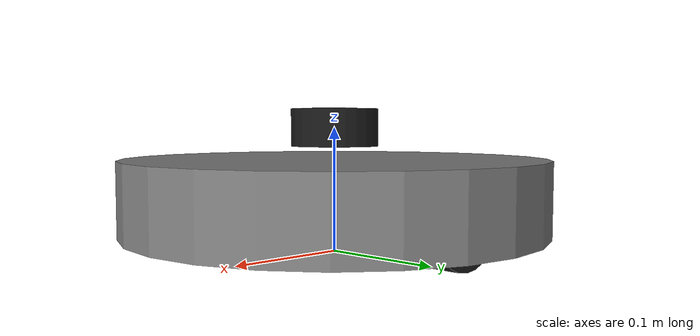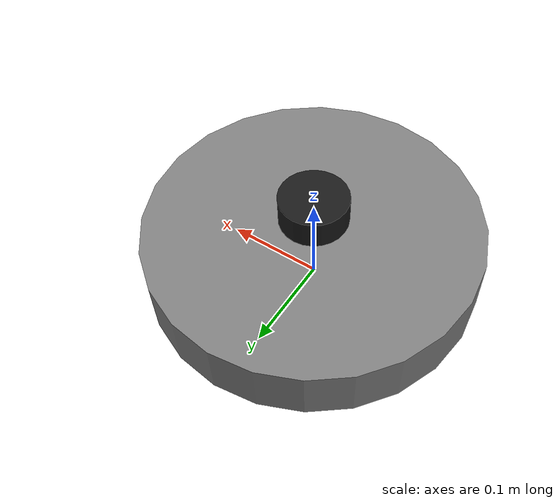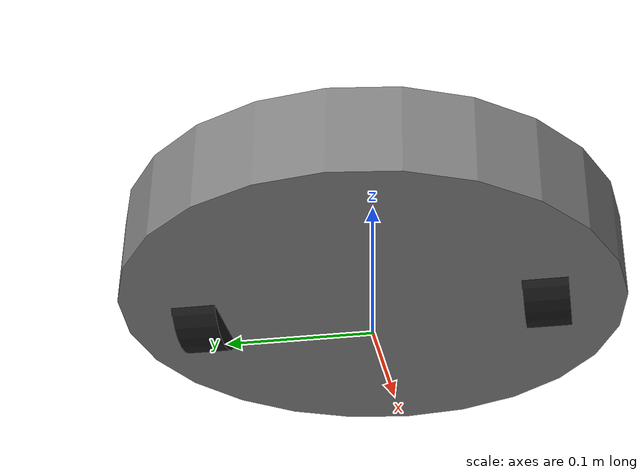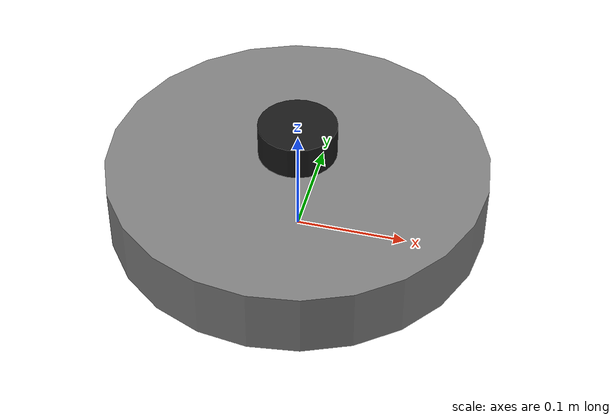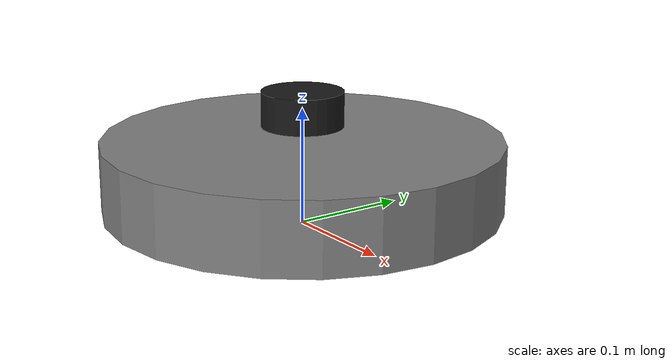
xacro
<?xml version="1.0"?>
<robot name="turtlebot4_minimal" xmlns:xacro="http://www.ros.org/wiki/xacro">

  <xacro:property name="base_radius" value="0.17"/>
  <xacro:property name="base_height" value="0.06"/>
  <xacro:property name="wheel_radius" value="0.036"/>   <!-- 72 mm diameter -->
  <xacro:property name="wheel_width"  value="0.03"/>
  <xacro:property name="track"        value="0.234"/>   <!-- wheel separation (center-to-center) -->
  <xacro:property name="lidar_x"      value="0.0"/>
  <xacro:property name="lidar_y"      value="0.0"/>
  <xacro:property name="lidar_z"      value="0.05"/>
  <xacro:property name="imu_x"        value="0.051"/>
  <xacro:property name="imu_y"        value="-0.035"/>
  <xacro:property name="imu_z"        value="0.0293"/>

  <!-- ========== LINKS ========== -->
  <!-- Base body -->
  <link name="base_link">
    <visual>
      <origin xyz="0 0 ${base_height/2 + 0.015}" rpy="0 0 0"/>
      <geometry>
        <cylinder radius="${base_radius}" length="${base_height}"/>
      </geometry>
      <material name="gray">
        <color rgba="0.5 0.5 0.5 1.0"/>
      </material>
    </visual>
    <collision>
      <origin xyz="0 0 ${base_height/2}" rpy="0 0 0"/>
      <geometry>
        <cylinder radius="${base_radius}" length="${base_height}"/>
      </geometry>
    </collision>
    <!-- (No inertial on root to avoid KDL warning) -->
  </link>

  <!-- Left wheel -->
  <link name="left_wheel_link">
    <visual>
      <!-- URDF cylinders are along Z; rotate +90° about X to align axis with Y -->
      <origin xyz="0 0 0" rpy="1.570796 0 0"/>
      <geometry>
        <cylinder radius="${wheel_radius}" length="${wheel_width}"/>
      </geometry>
      <material name="black">
        <color rgba="0.1 0.1 0.1 1.0"/>
      </material>
    </visual>
    <collision>
      <origin xyz="0 0 0" rpy="1.570796 0 0"/>
      <geometry>
        <cylinder radius="${wheel_radius}" length="${wheel_width}"/>
      </geometry>
    </collision>
    <inertial>
      <mass value="0.25"/>
      <!-- rough diagonal inertia for thin cylinder -->
      <inertia ixx="0.0005" ixy="0" ixz="0" iyy="0.0002" iyz="0" izz="0.0005"/>
    </inertial>
  </link>

  <!-- Right wheel -->
  <link name="right_wheel_link">
    <visual>
      <origin xyz="0 0 0" rpy="1.570796 0 0"/>
      <geometry>
        <cylinder radius="${wheel_radius}" length="${wheel_width}"/>
      </geometry>
      <material name="black">
        <color rgba="0.1 0.1 0.1 1.0"/>
      </material>
    </visual>
    <collision>
      <origin xyz="0 0 0" rpy="1.570796 0 0"/>
      <geometry>
        <cylinder radius="${wheel_radius}" length="${wheel_width}"/>
      </geometry>
    </collision>
    <inertial>
      <mass value="0.25"/>
      <inertia ixx="0.0005" ixy="0" ixz="0" iyy="0.0002" iyz="0" izz="0.0005"/>
    </inertial>
  </link>

  <!-- RPLidar head (simple cylinder) -->
  <link name="rplidar_link">
    <visual>
      <origin xyz="${lidar_x} ${lidar_y} ${lidar_z}" rpy="0 0 0"/>
      <geometry>
        <cylinder radius="0.035" length="0.03"/>
      </geometry>
      <material name="blue">
        <color rgba="0.1 0.1 0.1 1.0"/>
      </material>
    </visual>
    <collision>
      <origin xyz="${lidar_x} ${lidar_y} ${lidar_z}" rpy="0 0 0"/>
      <geometry>
        <cylinder radius="0.03" length="0.04"/>
      </geometry>
    </collision>
  </link>

  <!-- IMU frame (massless) -->
  <link name="imu_link">
    <visual>
      <origin xyz="${imu_x} ${imu_y} ${imu_z}" rpy="0 0 0"/>
      <geometry>
        <sphere radius="0.005"/>
      </geometry>
      <material name="green">
        <color rgba="0.2 1.0 0.2 1.0"/>
      </material>
    </visual>
  </link>

  <!-- ========== JOINTS ========== -->
  <!-- Wheels: continuous around Y -->
  <joint name="left_wheel_joint" type="continuous">
    <parent link="base_link"/>
    <child  link="left_wheel_link"/>
    <origin xyz="0 ${track/2} ${wheel_radius}" rpy="0 0 0"/>
    <axis xyz="0 1 0"/>
  </joint>

  <joint name="right_wheel_joint" type="continuous">
    <parent link="base_link"/>
    <child  link="right_wheel_link"/>
    <origin xyz="0 ${-track/2} ${wheel_radius}" rpy="0 0 0"/>
    <axis xyz="0 1 0"/>
  </joint>

  <!-- Lidar is fixed to the base at (0, 0.04, 0.17) -->
  <joint name="rplidar_mount" type="fixed">
    <parent link="base_link"/>
    <child  link="rplidar_link"/>
    <origin xyz="${lidar_x} ${lidar_y} ${lidar_z}" rpy="0 0 1.57"/>
  </joint>

  <!-- IMU fixed frame at MJCF site position -->
  <joint name="imu_mount" type="fixed">
    <parent link="base_link"/>
    <child  link="imu_link"/>
    <origin xyz="${imu_x} ${imu_y} ${imu_z}" rpy="0 0 0"/>
  </joint>

</robot>
